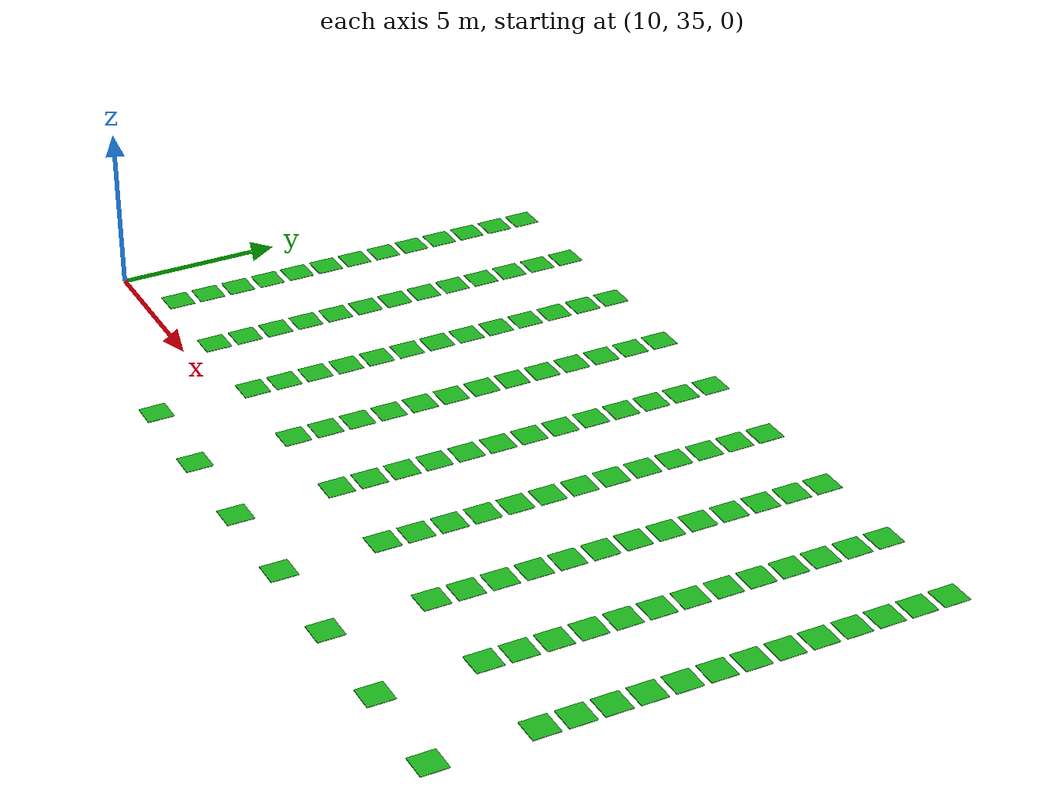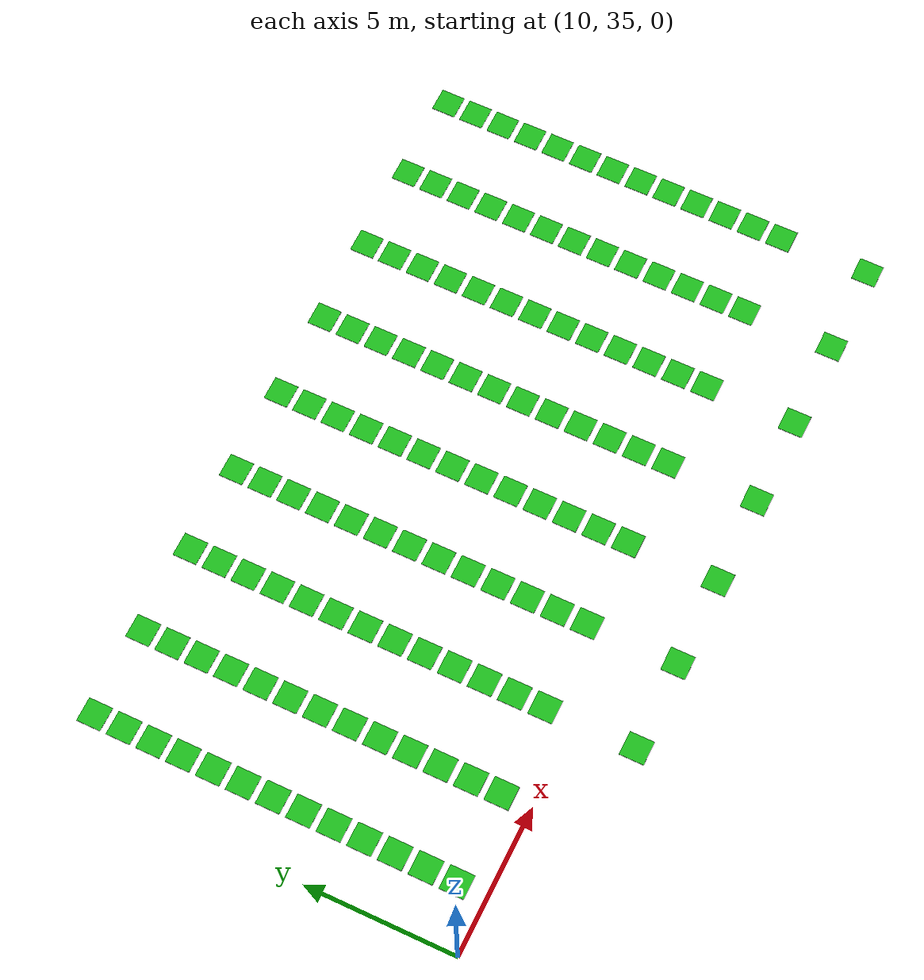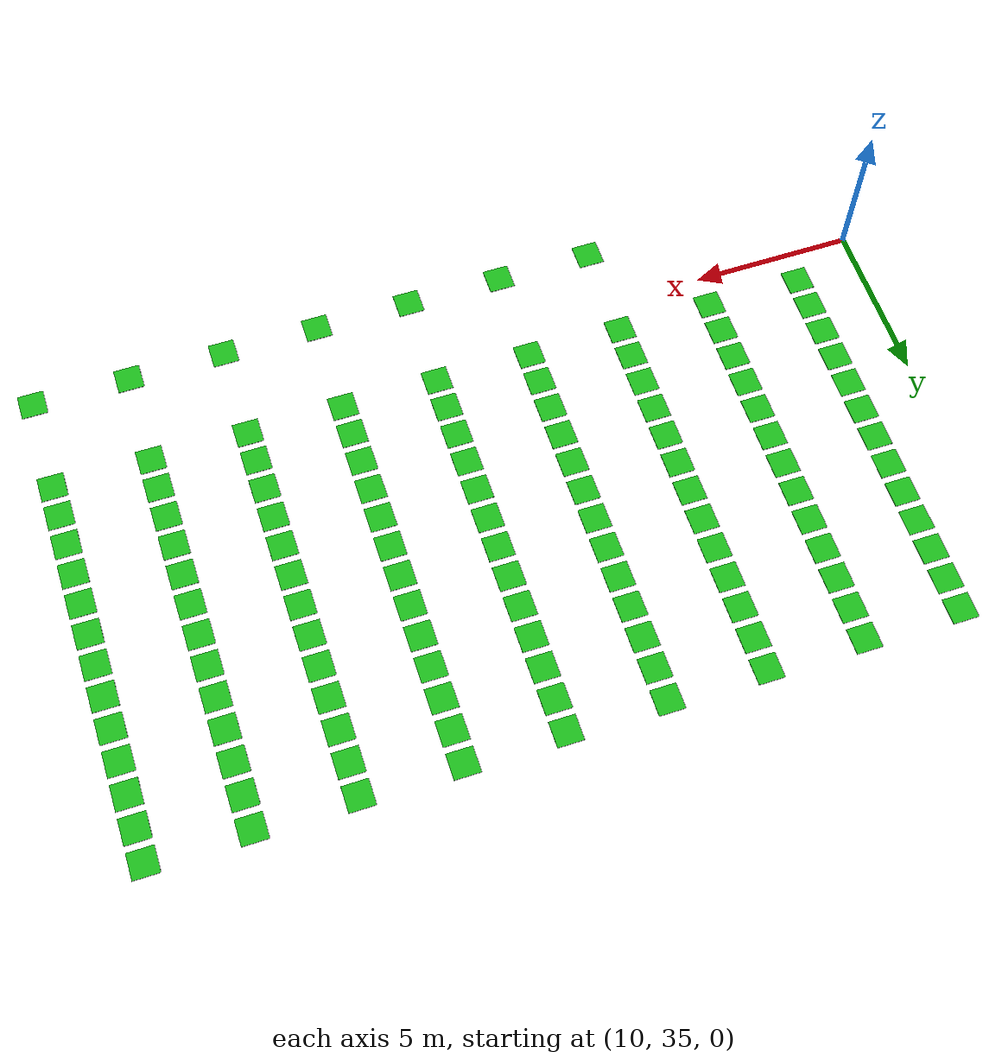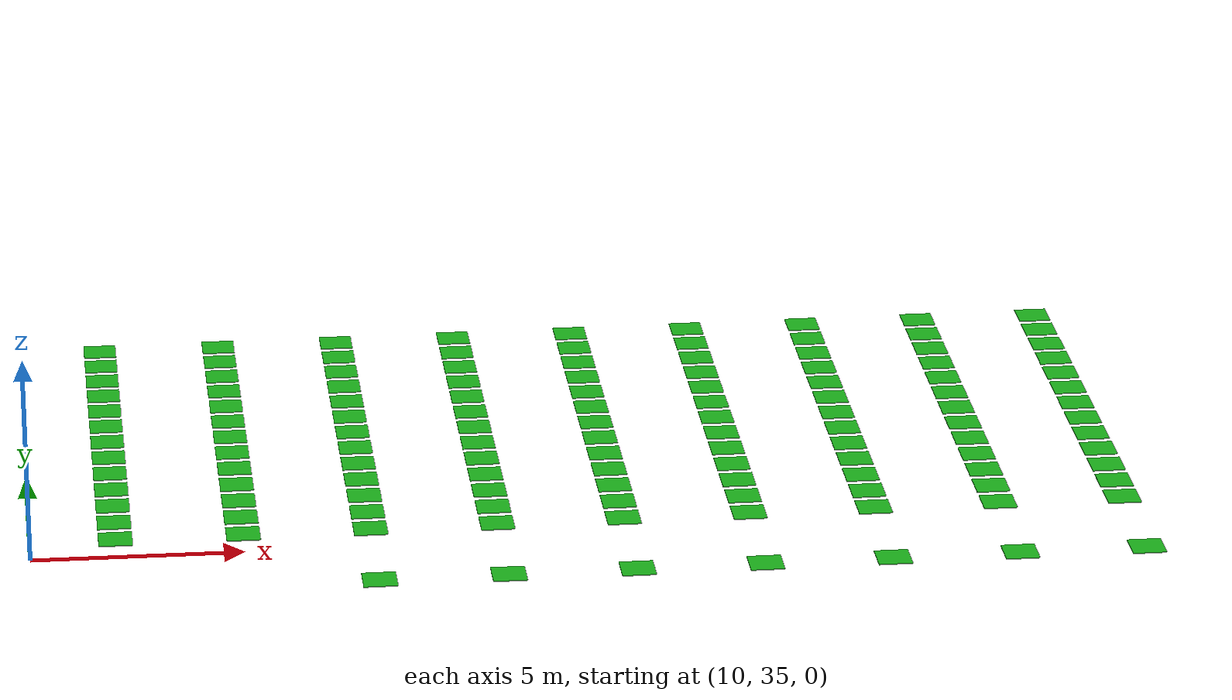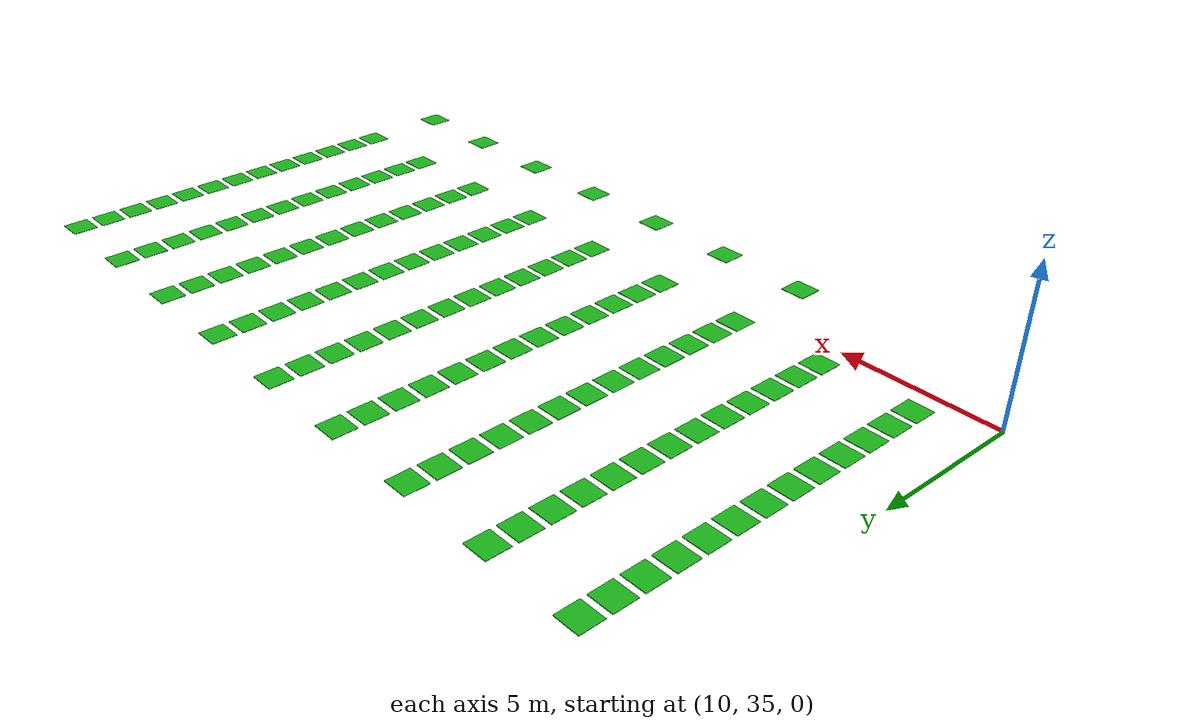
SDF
<sdf version="1.10">
 <world name="my_map">
  <model name="shelf_1179">
   <static>true</static>
   <pose>12.0
        48.0
        0.02
        0 0 0</pose>
   <link name="link">
    <visual name="visual">
     <geometry><box><size>0.8
                0.8
                0.02</size></box></geometry>
     <material><ambient>0.10 0.70 0.10 1</ambient><diffuse>0.10 0.70 0.10 1</diffuse></material>
    </visual>
   </link>
  </model>
  <model name="shelf_1180">
   <static>true</static>
   <pose>15.0
        48.0
        0.02
        0 0 0</pose>
   <link name="link">
    <visual name="visual">
     <geometry><box><size>0.8
                0.8
                0.02</size></box></geometry>
     <material><ambient>0.10 0.70 0.10 1</ambient><diffuse>0.10 0.70 0.10 1</diffuse></material>
    </visual>
   </link>
  </model>
  <model name="shelf_1181">
   <static>true</static>
   <pose>18.0
        48.0
        0.02
        0 0 0</pose>
   <link name="link">
    <visual name="visual">
     <geometry><box><size>0.8
                0.8
                0.02</size></box></geometry>
     <material><ambient>0.10 0.70 0.10 1</ambient><diffuse>0.10 0.70 0.10 1</diffuse></material>
    </visual>
   </link>
  </model>
  <model name="shelf_1182">
   <static>true</static>
   <pose>21.0
        48.0
        0.02
        0 0 0</pose>
   <link name="link">
    <visual name="visual">
     <geometry><box><size>0.8
                0.8
                0.02</size></box></geometry>
     <material><ambient>0.10 0.70 0.10 1</ambient><diffuse>0.10 0.70 0.10 1</diffuse></material>
    </visual>
   </link>
  </model>
  <model name="shelf_1183">
   <static>true</static>
   <pose>24.0
        48.0
        0.02
        0 0 0</pose>
   <link name="link">
    <visual name="visual">
     <geometry><box><size>0.8
                0.8
                0.02</size></box></geometry>
     <material><ambient>0.10 0.70 0.10 1</ambient><diffuse>0.10 0.70 0.10 1</diffuse></material>
    </visual>
   </link>
  </model>
  <model name="shelf_1184">
   <static>true</static>
   <pose>27.0
        48.0
        0.02
        0 0 0</pose>
   <link name="link">
    <visual name="visual">
     <geometry><box><size>0.8
                0.8
                0.02</size></box></geometry>
     <material><ambient>0.10 0.70 0.10 1</ambient><diffuse>0.10 0.70 0.10 1</diffuse></material>
    </visual>
   </link>
  </model>
  <model name="shelf_1185">
   <static>true</static>
   <pose>30.0
        48.0
        0.02
        0 0 0</pose>
   <link name="link">
    <visual name="visual">
     <geometry><box><size>0.8
                0.8
                0.02</size></box></geometry>
     <material><ambient>0.10 0.70 0.10 1</ambient><diffuse>0.10 0.70 0.10 1</diffuse></material>
    </visual>
   </link>
  </model>
  <model name="shelf_1186">
   <static>true</static>
   <pose>33.0
        48.0
        0.02
        0 0 0</pose>
   <link name="link">
    <visual name="visual">
     <geometry><box><size>0.8
                0.8
                0.02</size></box></geometry>
     <material><ambient>0.10 0.70 0.10 1</ambient><diffuse>0.10 0.70 0.10 1</diffuse></material>
    </visual>
   </link>
  </model>
  <model name="shelf_1187">
   <static>true</static>
   <pose>36.0
        48.0
        0.02
        0 0 0</pose>
   <link name="link">
    <visual name="visual">
     <geometry><box><size>0.8
                0.8
                0.02</size></box></geometry>
     <material><ambient>0.10 0.70 0.10 1</ambient><diffuse>0.10 0.70 0.10 1</diffuse></material>
    </visual>
   </link>
  </model>
  <model name="shelf_1204">
   <static>true</static>
   <pose>12.0
        47.0
        0.02
        0 0 0</pose>
   <link name="link">
    <visual name="visual">
     <geometry><box><size>0.8
                0.8
                0.02</size></box></geometry>
     <material><ambient>0.10 0.70 0.10 1</ambient><diffuse>0.10 0.70 0.10 1</diffuse></material>
    </visual>
   </link>
  </model>
  <model name="shelf_1205">
   <static>true</static>
   <pose>15.0
        47.0
        0.02
        0 0 0</pose>
   <link name="link">
    <visual name="visual">
     <geometry><box><size>0.8
                0.8
                0.02</size></box></geometry>
     <material><ambient>0.10 0.70 0.10 1</ambient><diffuse>0.10 0.70 0.10 1</diffuse></material>
    </visual>
   </link>
  </model>
  <model name="shelf_1206">
   <static>true</static>
   <pose>18.0
        47.0
        0.02
        0 0 0</pose>
   <link name="link">
    <visual name="visual">
     <geometry><box><size>0.8
                0.8
                0.02</size></box></geometry>
     <material><ambient>0.10 0.70 0.10 1</ambient><diffuse>0.10 0.70 0.10 1</diffuse></material>
    </visual>
   </link>
  </model>
  <model name="shelf_1207">
   <static>true</static>
   <pose>21.0
        47.0
        0.02
        0 0 0</pose>
   <link name="link">
    <visual name="visual">
     <geometry><box><size>0.8
                0.8
                0.02</size></box></geometry>
     <material><ambient>0.10 0.70 0.10 1</ambient><diffuse>0.10 0.70 0.10 1</diffuse></material>
    </visual>
   </link>
  </model>
  <model name="shelf_1208">
   <static>true</static>
   <pose>24.0
        47.0
        0.02
        0 0 0</pose>
   <link name="link">
    <visual name="visual">
     <geometry><box><size>0.8
                0.8
                0.02</size></box></geometry>
     <material><ambient>0.10 0.70 0.10 1</ambient><diffuse>0.10 0.70 0.10 1</diffuse></material>
    </visual>
   </link>
  </model>
  <model name="shelf_1209">
   <static>true</static>
   <pose>27.0
        47.0
        0.02
        0 0 0</pose>
   <link name="link">
    <visual name="visual">
     <geometry><box><size>0.8
                0.8
                0.02</size></box></geometry>
     <material><ambient>0.10 0.70 0.10 1</ambient><diffuse>0.10 0.70 0.10 1</diffuse></material>
    </visual>
   </link>
  </model>
  <model name="shelf_1210">
   <static>true</static>
   <pose>30.0
        47.0
        0.02
        0 0 0</pose>
   <link name="link">
    <visual name="visual">
     <geometry><box><size>0.8
                0.8
                0.02</size></box></geometry>
     <material><ambient>0.10 0.70 0.10 1</ambient><diffuse>0.10 0.70 0.10 1</diffuse></material>
    </visual>
   </link>
  </model>
  <model name="shelf_1211">
   <static>true</static>
   <pose>33.0
        47.0
        0.02
        0 0 0</pose>
   <link name="link">
    <visual name="visual">
     <geometry><box><size>0.8
                0.8
                0.02</size></box></geometry>
     <material><ambient>0.10 0.70 0.10 1</ambient><diffuse>0.10 0.70 0.10 1</diffuse></material>
    </visual>
   </link>
  </model>
  <model name="shelf_1212">
   <static>true</static>
   <pose>36.0
        47.0
        0.02
        0 0 0</pose>
   <link name="link">
    <visual name="visual">
     <geometry><box><size>0.8
                0.8
                0.02</size></box></geometry>
     <material><ambient>0.10 0.70 0.10 1</ambient><diffuse>0.10 0.70 0.10 1</diffuse></material>
    </visual>
   </link>
  </model>
  <model name="shelf_1229">
   <static>true</static>
   <pose>12.0
        46.0
        0.02
        0 0 0</pose>
   <link name="link">
    <visual name="visual">
     <geometry><box><size>0.8
                0.8
                0.02</size></box></geometry>
     <material><ambient>0.10 0.70 0.10 1</ambient><diffuse>0.10 0.70 0.10 1</diffuse></material>
    </visual>
   </link>
  </model>
  <model name="shelf_1230">
   <static>true</static>
   <pose>15.0
        46.0
        0.02
        0 0 0</pose>
   <link name="link">
    <visual name="visual">
     <geometry><box><size>0.8
                0.8
                0.02</size></box></geometry>
     <material><ambient>0.10 0.70 0.10 1</ambient><diffuse>0.10 0.70 0.10 1</diffuse></material>
    </visual>
   </link>
  </model>
  <model name="shelf_1231">
   <static>true</static>
   <pose>18.0
        46.0
        0.02
        0 0 0</pose>
   <link name="link">
    <visual name="visual">
     <geometry><box><size>0.8
                0.8
                0.02</size></box></geometry>
     <material><ambient>0.10 0.70 0.10 1</ambient><diffuse>0.10 0.70 0.10 1</diffuse></material>
    </visual>
   </link>
  </model>
  <model name="shelf_1232">
   <static>true</static>
   <pose>21.0
        46.0
        0.02
        0 0 0</pose>
   <link name="link">
    <visual name="visual">
     <geometry><box><size>0.8
                0.8
                0.02</size></box></geometry>
     <material><ambient>0.10 0.70 0.10 1</ambient><diffuse>0.10 0.70 0.10 1</diffuse></material>
    </visual>
   </link>
  </model>
  <model name="shelf_1233">
   <static>true</static>
   <pose>24.0
        46.0
        0.02
        0 0 0</pose>
   <link name="link">
    <visual name="visual">
     <geometry><box><size>0.8
                0.8
                0.02</size></box></geometry>
     <material><ambient>0.10 0.70 0.10 1</ambient><diffuse>0.10 0.70 0.10 1</diffuse></material>
    </visual>
   </link>
  </model>
  <model name="shelf_1234">
   <static>true</static>
   <pose>27.0
        46.0
        0.02
        0 0 0</pose>
   <link name="link">
    <visual name="visual">
     <geometry><box><size>0.8
                0.8
                0.02</size></box></geometry>
     <material><ambient>0.10 0.70 0.10 1</ambient><diffuse>0.10 0.70 0.10 1</diffuse></material>
    </visual>
   </link>
  </model>
  <model name="shelf_1235">
   <static>true</static>
   <pose>30.0
        46.0
        0.02
        0 0 0</pose>
   <link name="link">
    <visual name="visual">
     <geometry><box><size>0.8
                0.8
                0.02</size></box></geometry>
     <material><ambient>0.10 0.70 0.10 1</ambient><diffuse>0.10 0.70 0.10 1</diffuse></material>
    </visual>
   </link>
  </model>
  <model name="shelf_1236">
   <static>true</static>
   <pose>33.0
        46.0
        0.02
        0 0 0</pose>
   <link name="link">
    <visual name="visual">
     <geometry><box><size>0.8
                0.8
                0.02</size></box></geometry>
     <material><ambient>0.10 0.70 0.10 1</ambient><diffuse>0.10 0.70 0.10 1</diffuse></material>
    </visual>
   </link>
  </model>
  <model name="shelf_1237">
   <static>true</static>
   <pose>36.0
        46.0
        0.02
        0 0 0</pose>
   <link name="link">
    <visual name="visual">
     <geometry><box><size>0.8
                0.8
                0.02</size></box></geometry>
     <material><ambient>0.10 0.70 0.10 1</ambient><diffuse>0.10 0.70 0.10 1</diffuse></material>
    </visual>
   </link>
  </model>
  <model name="shelf_1254">
   <static>true</static>
   <pose>12.0
        45.0
        0.02
        0 0 0</pose>
   <link name="link">
    <visual name="visual">
     <geometry><box><size>0.8
                0.8
                0.02</size></box></geometry>
     <material><ambient>0.10 0.70 0.10 1</ambient><diffuse>0.10 0.70 0.10 1</diffuse></material>
    </visual>
   </link>
  </model>
  <model name="shelf_1255">
   <static>true</static>
   <pose>15.0
        45.0
        0.02
        0 0 0</pose>
   <link name="link">
    <visual name="visual">
     <geometry><box><size>0.8
                0.8
                0.02</size></box></geometry>
     <material><ambient>0.10 0.70 0.10 1</ambient><diffuse>0.10 0.70 0.10 1</diffuse></material>
    </visual>
   </link>
  </model>
  <model name="shelf_1256">
   <static>true</static>
   <pose>18.0
        45.0
        0.02
        0 0 0</pose>
   <link name="link">
    <visual name="visual">
     <geometry><box><size>0.8
                0.8
                0.02</size></box></geometry>
     <material><ambient>0.10 0.70 0.10 1</ambient><diffuse>0.10 0.70 0.10 1</diffuse></material>
    </visual>
   </link>
  </model>
  <model name="shelf_1257">
   <static>true</static>
   <pose>21.0
        45.0
        0.02
        0 0 0</pose>
   <link name="link">
    <visual name="visual">
     <geometry><box><size>0.8
                0.8
                0.02</size></box></geometry>
     <material><ambient>0.10 0.70 0.10 1</ambient><diffuse>0.10 0.70 0.10 1</diffuse></material>
    </visual>
   </link>
  </model>
  <model name="shelf_1258">
   <static>true</static>
   <pose>24.0
        45.0
        0.02
        0 0 0</pose>
   <link name="link">
    <visual name="visual">
     <geometry><box><size>0.8
                0.8
                0.02</size></box></geometry>
     <material><ambient>0.10 0.70 0.10 1</ambient><diffuse>0.10 0.70 0.10 1</diffuse></material>
    </visual>
   </link>
  </model>
  <model name="shelf_1259">
   <static>true</static>
   <pose>27.0
        45.0
        0.02
        0 0 0</pose>
   <link name="link">
    <visual name="visual">
     <geometry><box><size>0.8
                0.8
                0.02</size></box></geometry>
     <material><ambient>0.10 0.70 0.10 1</ambient><diffuse>0.10 0.70 0.10 1</diffuse></material>
    </visual>
   </link>
  </model>
  <model name="shelf_1260">
   <static>true</static>
   <pose>30.0
        45.0
        0.02
        0 0 0</pose>
   <link name="link">
    <visual name="visual">
     <geometry><box><size>0.8
                0.8
                0.02</size></box></geometry>
     <material><ambient>0.10 0.70 0.10 1</ambient><diffuse>0.10 0.70 0.10 1</diffuse></material>
    </visual>
   </link>
  </model>
  <model name="shelf_1261">
   <static>true</static>
   <pose>33.0
        45.0
        0.02
        0 0 0</pose>
   <link name="link">
    <visual name="visual">
     <geometry><box><size>0.8
                0.8
                0.02</size></box></geometry>
     <material><ambient>0.10 0.70 0.10 1</ambient><diffuse>0.10 0.70 0.10 1</diffuse></material>
    </visual>
   </link>
  </model>
  <model name="shelf_1262">
   <static>true</static>
   <pose>36.0
        45.0
        0.02
        0 0 0</pose>
   <link name="link">
    <visual name="visual">
     <geometry><box><size>0.8
                0.8
                0.02</size></box></geometry>
     <material><ambient>0.10 0.70 0.10 1</ambient><diffuse>0.10 0.70 0.10 1</diffuse></material>
    </visual>
   </link>
  </model>
  <model name="shelf_1279">
   <static>true</static>
   <pose>12.0
        44.0
        0.02
        0 0 0</pose>
   <link name="link">
    <visual name="visual">
     <geometry><box><size>0.8
                0.8
                0.02</size></box></geometry>
     <material><ambient>0.10 0.70 0.10 1</ambient><diffuse>0.10 0.70 0.10 1</diffuse></material>
    </visual>
   </link>
  </model>
  <model name="shelf_1280">
   <static>true</static>
   <pose>15.0
        44.0
        0.02
        0 0 0</pose>
   <link name="link">
    <visual name="visual">
     <geometry><box><size>0.8
                0.8
                0.02</size></box></geometry>
     <material><ambient>0.10 0.70 0.10 1</ambient><diffuse>0.10 0.70 0.10 1</diffuse></material>
    </visual>
   </link>
  </model>
  <model name="shelf_1281">
   <static>true</static>
   <pose>18.0
        44.0
        0.02
        0 0 0</pose>
   <link name="link">
    <visual name="visual">
     <geometry><box><size>0.8
                0.8
                0.02</size></box></geometry>
     <material><ambient>0.10 0.70 0.10 1</ambient><diffuse>0.10 0.70 0.10 1</diffuse></material>
    </visual>
   </link>
  </model>
  <model name="shelf_1282">
   <static>true</static>
   <pose>21.0
        44.0
        0.02
        0 0 0</pose>
   <link name="link">
    <visual name="visual">
     <geometry><box><size>0.8
                0.8
                0.02</size></box></geometry>
     <material><ambient>0.10 0.70 0.10 1</ambient><diffuse>0.10 0.70 0.10 1</diffuse></material>
    </visual>
   </link>
  </model>
  <model name="shelf_1283">
   <static>true</static>
   <pose>24.0
        44.0
        0.02
        0 0 0</pose>
   <link name="link">
    <visual name="visual">
     <geometry><box><size>0.8
                0.8
                0.02</size></box></geometry>
     <material><ambient>0.10 0.70 0.10 1</ambient><diffuse>0.10 0.70 0.10 1</diffuse></material>
    </visual>
   </link>
  </model>
  <model name="shelf_1284">
   <static>true</static>
   <pose>27.0
        44.0
        0.02
        0 0 0</pose>
   <link name="link">
    <visual name="visual">
     <geometry><box><size>0.8
                0.8
                0.02</size></box></geometry>
     <material><ambient>0.10 0.70 0.10 1</ambient><diffuse>0.10 0.70 0.10 1</diffuse></material>
    </visual>
   </link>
  </model>
  <model name="shelf_1285">
   <static>true</static>
   <pose>30.0
        44.0
        0.02
        0 0 0</pose>
   <link name="link">
    <visual name="visual">
     <geometry><box><size>0.8
                0.8
                0.02</size></box></geometry>
     <material><ambient>0.10 0.70 0.10 1</ambient><diffuse>0.10 0.70 0.10 1</diffuse></material>
    </visual>
   </link>
  </model>
  <model name="shelf_1286">
   <static>true</static>
   <pose>33.0
        44.0
        0.02
        0 0 0</pose>
   <link name="link">
    <visual name="visual">
     <geometry><box><size>0.8
                0.8
                0.02</size></box></geometry>
     <material><ambient>0.10 0.70 0.10 1</ambient><diffuse>0.10 0.70 0.10 1</diffuse></material>
    </visual>
   </link>
  </model>
  <model name="shelf_1287">
   <static>true</static>
   <pose>36.0
        44.0
        0.02
        0 0 0</pose>
   <link name="link">
    <visual name="visual">
     <geometry><box><size>0.8
                0.8
                0.02</size></box></geometry>
     <material><ambient>0.10 0.70 0.10 1</ambient><diffuse>0.10 0.70 0.10 1</diffuse></material>
    </visual>
   </link>
  </model>
  <model name="shelf_1304">
   <static>true</static>
   <pose>12.0
        43.0
        0.02
        0 0 0</pose>
   <link name="link">
    <visual name="visual">
     <geometry><box><size>0.8
                0.8
                0.02</size></box></geometry>
     <material><ambient>0.10 0.70 0.10 1</ambient><diffuse>0.10 0.70 0.10 1</diffuse></material>
    </visual>
   </link>
  </model>
  <model name="shelf_1305">
   <static>true</static>
   <pose>15.0
        43.0
        0.02
        0 0 0</pose>
   <link name="link">
    <visual name="visual">
     <geometry><box><size>0.8
                0.8
                0.02</size></box></geometry>
     <material><ambient>0.10 0.70 0.10 1</ambient><diffuse>0.10 0.70 0.10 1</diffuse></material>
    </visual>
   </link>
  </model>
  <model name="shelf_1306">
   <static>true</static>
   <pose>18.0
        43.0
        0.02
        0 0 0</pose>
   <link name="link">
    <visual name="visual">
     <geometry><box><size>0.8
                0.8
                0.02</size></box></geometry>
     <material><ambient>0.10 0.70 0.10 1</ambient><diffuse>0.10 0.70 0.10 1</diffuse></material>
    </visual>
   </link>
  </model>
  <model name="shelf_1307">
   <static>true</static>
   <pose>21.0
        43.0
        0.02
        0 0 0</pose>
   <link name="link">
    <visual name="visual">
     <geometry><box><size>0.8
                0.8
                0.02</size></box></geometry>
     <material><ambient>0.10 0.70 0.10 1</ambient><diffuse>0.10 0.70 0.10 1</diffuse></material>
    </visual>
   </link>
  </model>
  <model name="shelf_1308">
   <static>true</static>
   <pose>24.0
        43.0
        0.02
        0 0 0</pose>
   <link name="link">
    <visual name="visual">
     <geometry><box><size>0.8
                0.8
                0.02</size></box></geometry>
     <material><ambient>0.10 0.70 0.10 1</ambient><diffuse>0.10 0.70 0.10 1</diffuse></material>
    </visual>
   </link>
  </model>
  <model name="shelf_1309">
   <static>true</static>
   <pose>27.0
        43.0
        0.02
        0 0 0</pose>
   <link name="link">
    <visual name="visual">
     <geometry><box><size>0.8
                0.8
                0.02</size></box></geometry>
     <material><ambient>0.10 0.70 0.10 1</ambient><diffuse>0.10 0.70 0.10 1</diffuse></material>
    </visual>
   </link>
  </model>
  <model name="shelf_1310">
   <static>true</static>
   <pose>30.0
        43.0
        0.02
        0 0 0</pose>
   <link name="link">
    <visual name="visual">
     <geometry><box><size>0.8
                0.8
                0.02</size></box></geometry>
     <material><ambient>0.10 0.70 0.10 1</ambient><diffuse>0.10 0.70 0.10 1</diffuse></material>
    </visual>
   </link>
  </model>
  <model name="shelf_1311">
   <static>true</static>
   <pose>33.0
        43.0
        0.02
        0 0 0</pose>
   <link name="link">
    <visual name="visual">
     <geometry><box><size>0.8
                0.8
                0.02</size></box></geometry>
     <material><ambient>0.10 0.70 0.10 1</ambient><diffuse>0.10 0.70 0.10 1</diffuse></material>
    </visual>
   </link>
  </model>
  <model name="shelf_1312">
   <static>true</static>
   <pose>36.0
        43.0
        0.02
        0 0 0</pose>
   <link name="link">
    <visual name="visual">
     <geometry><box><size>0.8
                0.8
                0.02</size></box></geometry>
     <material><ambient>0.10 0.70 0.10 1</ambient><diffuse>0.10 0.70 0.10 1</diffuse></material>
    </visual>
   </link>
  </model>
  <model name="shelf_1329">
   <static>true</static>
   <pose>12.0
        42.0
        0.02
        0 0 0</pose>
   <link name="link">
    <visual name="visual">
     <geometry><box><size>0.8
                0.8
                0.02</size></box></geometry>
     <material><ambient>0.10 0.70 0.10 1</ambient><diffuse>0.10 0.70 0.10 1</diffuse></material>
    </visual>
   </link>
  </model>
  <model name="shelf_1330">
   <static>true</static>
   <pose>15.0
        42.0
        0.02
        0 0 0</pose>
   <link name="link">
    <visual name="visual">
     <geometry><box><size>0.8
                0.8
                0.02</size></box></geometry>
     <material><ambient>0.10 0.70 0.10 1</ambient><diffuse>0.10 0.70 0.10 1</diffuse></material>
    </visual>
   </link>
  </model>
  <model name="shelf_1331">
   <static>true</static>
   <pose>18.0
        42.0
        0.02
        0 0 0</pose>
   <link name="link">
    <visual name="visual">
     <geometry><box><size>0.8
                0.8
                0.02</size></box></geometry>
     <material><ambient>0.10 0.70 0.10 1</ambient><diffuse>0.10 0.70 0.10 1</diffuse></material>
    </visual>
   </link>
  </model>
  <model name="shelf_1332">
   <static>true</static>
   <pose>21.0
        42.0
        0.02
        0 0 0</pose>
   <link name="link">
    <visual name="visual">
     <geometry><box><size>0.8
                0.8
                0.02</size></box></geometry>
     <material><ambient>0.10 0.70 0.10 1</ambient><diffuse>0.10 0.70 0.10 1</diffuse></material>
    </visual>
   </link>
  </model>
  <model name="shelf_1333">
   <static>true</static>
   <pose>24.0
        42.0
        0.02
        0 0 0</pose>
   <link name="link">
    <visual name="visual">
     <geometry><box><size>0.8
                0.8
                0.02</size></box></geometry>
     <material><ambient>0.10 0.70 0.10 1</ambient><diffuse>0.10 0.70 0.10 1</diffuse></material>
    </visual>
   </link>
  </model>
  <model name="shelf_1334">
   <static>true</static>
   <pose>27.0
        42.0
        0.02
        0 0 0</pose>
   <link name="link">
    <visual name="visual">
     <geometry><box><size>0.8
                0.8
                0.02</size></box></geometry>
     <material><ambient>0.10 0.70 0.10 1</ambient><diffuse>0.10 0.70 0.10 1</diffuse></material>
    </visual>
   </link>
  </model>
  <model name="shelf_1335">
   <static>true</static>
   <pose>30.0
        42.0
        0.02
        0 0 0</pose>
   <link name="link">
    <visual name="visual">
     <geometry><box><size>0.8
                0.8
                0.02</size></box></geometry>
     <material><ambient>0.10 0.70 0.10 1</ambient><diffuse>0.10 0.70 0.10 1</diffuse></material>
    </visual>
   </link>
  </model>
  <model name="shelf_1336">
   <static>true</static>
   <pose>33.0
        42.0
        0.02
        0 0 0</pose>
   <link name="link">
    <visual name="visual">
     <geometry><box><size>0.8
                0.8
                0.02</size></box></geometry>
     <material><ambient>0.10 0.70 0.10 1</ambient><diffuse>0.10 0.70 0.10 1</diffuse></material>
    </visual>
   </link>
  </model>
  <model name="shelf_1337">
   <static>true</static>
   <pose>36.0
        42.0
        0.02
        0 0 0</pose>
   <link name="link">
    <visual name="visual">
     <geometry><box><size>0.8
                0.8
                0.02</size></box></geometry>
     <material><ambient>0.10 0.70 0.10 1</ambient><diffuse>0.10 0.70 0.10 1</diffuse></material>
    </visual>
   </link>
  </model>
  <model name="shelf_1354">
   <static>true</static>
   <pose>12.0
        41.0
        0.02
        0 0 0</pose>
   <link name="link">
    <visual name="visual">
     <geometry><box><size>0.8
                0.8
                0.02</size></box></geometry>
     <material><ambient>0.10 0.70 0.10 1</ambient><diffuse>0.10 0.70 0.10 1</diffuse></material>
    </visual>
   </link>
  </model>
  <model name="shelf_1355">
   <static>true</static>
   <pose>15.0
        41.0
        0.02
        0 0 0</pose>
   <link name="link">
    <visual name="visual">
     <geometry><box><size>0.8
                0.8
                0.02</size></box></geometry>
     <material><ambient>0.10 0.70 0.10 1</ambient><diffuse>0.10 0.70 0.10 1</diffuse></material>
    </visual>
   </link>
  </model>
  <model name="shelf_1356">
   <static>true</static>
   <pose>18.0
        41.0
        0.02
        0 0 0</pose>
   <link name="link">
    <visual name="visual">
     <geometry><box><size>0.8
                0.8
                0.02</size></box></geometry>
     <material><ambient>0.10 0.70 0.10 1</ambient><diffuse>0.10 0.70 0.10 1</diffuse></material>
    </visual>
   </link>
  </model>
  <model name="shelf_1357">
   <static>true</static>
   <pose>21.0
        41.0
        0.02
        0 0 0</pose>
   <link name="link">
    <visual name="visual">
     <geometry><box><size>0.8
                0.8
                0.02</size></box></geometry>
     <material><ambient>0.10 0.70 0.10 1</ambient><diffuse>0.10 0.70 0.10 1</diffuse></material>
    </visual>
   </link>
  </model>
  <model name="shelf_1358">
   <static>true</static>
   <pose>24.0
        41.0
        0.02
        0 0 0</pose>
   <link name="link">
    <visual name="visual">
     <geometry><box><size>0.8
                0.8
                0.02</size></box></geometry>
     <material><ambient>0.10 0.70 0.10 1</ambient><diffuse>0.10 0.70 0.10 1</diffuse></material>
    </visual>
   </link>
  </model>
  <model name="shelf_1359">
   <static>true</static>
   <pose>27.0
        41.0
        0.02
        0 0 0</pose>
   <link name="link">
    <visual name="visual">
     <geometry><box><size>0.8
                0.8
                0.02</size></box></geometry>
     <material><ambient>0.10 0.70 0.10 1</ambient><diffuse>0.10 0.70 0.10 1</diffuse></material>
    </visual>
   </link>
  </model>
  <model name="shelf_1360">
   <static>true</static>
   <pose>30.0
        41.0
        0.02
        0 0 0</pose>
   <link name="link">
    <visual name="visual">
     <geometry><box><size>0.8
                0.8
                0.02</size></box></geometry>
     <material><ambient>0.10 0.70 0.10 1</ambient><diffuse>0.10 0.70 0.10 1</diffuse></material>
    </visual>
   </link>
  </model>
  <model name="shelf_1361">
   <static>true</static>
   <pose>33.0
        41.0
        0.02
        0 0 0</pose>
   <link name="link">
    <visual name="visual">
     <geometry><box><size>0.8
                0.8
                0.02</size></box></geometry>
     <material><ambient>0.10 0.70 0.10 1</ambient><diffuse>0.10 0.70 0.10 1</diffuse></material>
    </visual>
   </link>
  </model>
  <model name="shelf_1362">
   <static>true</static>
   <pose>36.0
        41.0
        0.02
        0 0 0</pose>
   <link name="link">
    <visual name="visual">
     <geometry><box><size>0.8
                0.8
                0.02</size></box></geometry>
     <material><ambient>0.10 0.70 0.10 1</ambient><diffuse>0.10 0.70 0.10 1</diffuse></material>
    </visual>
   </link>
  </model>
  <model name="shelf_1379">
   <static>true</static>
   <pose>12.0
        40.0
        0.02
        0 0 0</pose>
   <link name="link">
    <visual name="visual">
     <geometry><box><size>0.8
                0.8
                0.02</size></box></geometry>
     <material><ambient>0.10 0.70 0.10 1</ambient><diffuse>0.10 0.70 0.10 1</diffuse></material>
    </visual>
   </link>
  </model>
  <model name="shelf_1380">
   <static>true</static>
   <pose>15.0
        40.0
        0.02
        0 0 0</pose>
   <link name="link">
    <visual name="visual">
     <geometry><box><size>0.8
                0.8
                0.02</size></box></geometry>
     <material><ambient>0.10 0.70 0.10 1</ambient><diffuse>0.10 0.70 0.10 1</diffuse></material>
    </visual>
   </link>
  </model>
  <model name="shelf_1381">
   <static>true</static>
   <pose>18.0
        40.0
        0.02
        0 0 0</pose>
   <link name="link">
    <visual name="visual">
     <geometry><box><size>0.8
                0.8
                0.02</size></box></geometry>
     <material><ambient>0.10 0.70 0.10 1</ambient><diffuse>0.10 0.70 0.10 1</diffuse></material>
    </visual>
   </link>
  </model>
  <model name="shelf_1382">
   <static>true</static>
   <pose>21.0
        40.0
        0.02
        0 0 0</pose>
   <link name="link">
    <visual name="visual">
     <geometry><box><size>0.8
                0.8
                0.02</size></box></geometry>
     <material><ambient>0.10 0.70 0.10 1</ambient><diffuse>0.10 0.70 0.10 1</diffuse></material>
    </visual>
   </link>
  </model>
  <model name="shelf_1383">
   <static>true</static>
   <pose>24.0
        40.0
        0.02
        0 0 0</pose>
   <link name="link">
    <visual name="visual">
     <geometry><box><size>0.8
                0.8
                0.02</size></box></geometry>
     <material><ambient>0.10 0.70 0.10 1</ambient><diffuse>0.10 0.70 0.10 1</diffuse></material>
    </visual>
   </link>
  </model>
  <model name="shelf_1384">
   <static>true</static>
   <pose>27.0
        40.0
        0.02
        0 0 0</pose>
   <link name="link">
    <visual name="visual">
     <geometry><box><size>0.8
                0.8
                0.02</size></box></geometry>
     <material><ambient>0.10 0.70 0.10 1</ambient><diffuse>0.10 0.70 0.10 1</diffuse></material>
    </visual>
   </link>
  </model>
  <model name="shelf_1385">
   <static>true</static>
   <pose>30.0
        40.0
        0.02
        0 0 0</pose>
   <link name="link">
    <visual name="visual">
     <geometry><box><size>0.8
                0.8
                0.02</size></box></geometry>
     <material><ambient>0.10 0.70 0.10 1</ambient><diffuse>0.10 0.70 0.10 1</diffuse></material>
    </visual>
   </link>
  </model>
  <model name="shelf_1386">
   <static>true</static>
   <pose>33.0
        40.0
        0.02
        0 0 0</pose>
   <link name="link">
    <visual name="visual">
     <geometry><box><size>0.8
                0.8
                0.02</size></box></geometry>
     <material><ambient>0.10 0.70 0.10 1</ambient><diffuse>0.10 0.70 0.10 1</diffuse></material>
    </visual>
   </link>
  </model>
  <model name="shelf_1387">
   <static>true</static>
   <pose>36.0
        40.0
        0.02
        0 0 0</pose>
   <link name="link">
    <visual name="visual">
     <geometry><box><size>0.8
                0.8
                0.02</size></box></geometry>
     <material><ambient>0.10 0.70 0.10 1</ambient><diffuse>0.10 0.70 0.10 1</diffuse></material>
    </visual>
   </link>
  </model>
  <model name="shelf_1404">
   <static>true</static>
   <pose>12.0
        39.0
        0.02
        0 0 0</pose>
   <link name="link">
    <visual name="visual">
     <geometry><box><size>0.8
                0.8
                0.02</size></box></geometry>
     <material><ambient>0.10 0.70 0.10 1</ambient><diffuse>0.10 0.70 0.10 1</diffuse></material>
    </visual>
   </link>
  </model>
  <model name="shelf_1405">
   <static>true</static>
   <pose>15.0
        39.0
        0.02
        0 0 0</pose>
   <link name="link">
    <visual name="visual">
     <geometry><box><size>0.8
                0.8
                0.02</size></box></geometry>
     <material><ambient>0.10 0.70 0.10 1</ambient><diffuse>0.10 0.70 0.10 1</diffuse></material>
    </visual>
   </link>
  </model>
  <model name="shelf_1406">
   <static>true</static>
   <pose>18.0
        39.0
        0.02
        0 0 0</pose>
   <link name="link">
    <visual name="visual">
     <geometry><box><size>0.8
                0.8
                0.02</size></box></geometry>
     <material><ambient>0.10 0.70 0.10 1</ambient><diffuse>0.10 0.70 0.10 1</diffuse></material>
    </visual>
   </link>
  </model>
  <model name="shelf_1407">
   <static>true</static>
   <pose>21.0
        39.0
        0.02
        0 0 0</pose>
   <link name="link">
    <visual name="visual">
     <geometry><box><size>0.8
                0.8
                0.02</size></box></geometry>
     <material><ambient>0.10 0.70 0.10 1</ambient><diffuse>0.10 0.70 0.10 1</diffuse></material>
    </visual>
   </link>
  </model>
  <model name="shelf_1408">
   <static>true</static>
   <pose>24.0
        39.0
        0.02
        0 0 0</pose>
   <link name="link">
    <visual name="visual">
     <geometry><box><size>0.8
                0.8
                0.02</size></box></geometry>
     <material><ambient>0.10 0.70 0.10 1</ambient><diffuse>0.10 0.70 0.10 1</diffuse></material>
    </visual>
   </link>
  </model>
  <model name="shelf_1409">
   <static>true</static>
   <pose>27.0
        39.0
        0.02
        0 0 0</pose>
   <link name="link">
    <visual name="visual">
     <geometry><box><size>0.8
                0.8
                0.02</size></box></geometry>
     <material><ambient>0.10 0.70 0.10 1</ambient><diffuse>0.10 0.70 0.10 1</diffuse></material>
    </visual>
   </link>
  </model>
  <model name="shelf_1410">
   <static>true</static>
   <pose>30.0
        39.0
        0.02
        0 0 0</pose>
   <link name="link">
    <visual name="visual">
     <geometry><box><size>0.8
                0.8
                0.02</size></box></geometry>
     <material><ambient>0.10 0.70 0.10 1</ambient><diffuse>0.10 0.70 0.10 1</diffuse></material>
    </visual>
   </link>
  </model>
  <model name="shelf_1411">
   <static>true</static>
   <pose>33.0
        39.0
        0.02
        0 0 0</pose>
   <link name="link">
    <visual name="visual">
     <geometry><box><size>0.8
                0.8
                0.02</size></box></geometry>
     <material><ambient>0.10 0.70 0.10 1</ambient><diffuse>0.10 0.70 0.10 1</diffuse></material>
    </visual>
   </link>
  </model>
  <model name="shelf_1412">
   <static>true</static>
   <pose>36.0
        39.0
        0.02
        0 0 0</pose>
   <link name="link">
    <visual name="visual">
     <geometry><box><size>0.8
                0.8
                0.02</size></box></geometry>
     <material><ambient>0.10 0.70 0.10 1</ambient><diffuse>0.10 0.70 0.10 1</diffuse></material>
    </visual>
   </link>
  </model>
  <model name="shelf_1429">
   <static>true</static>
   <pose>12.0
        38.0
        0.02
        0 0 0</pose>
   <link name="link">
    <visual name="visual">
     <geometry><box><size>0.8
                0.8
                0.02</size></box></geometry>
     <material><ambient>0.10 0.70 0.10 1</ambient><diffuse>0.10 0.70 0.10 1</diffuse></material>
    </visual>
   </link>
  </model>
  <model name="shelf_1430">
   <static>true</static>
   <pose>15.0
        38.0
        0.02
        0 0 0</pose>
   <link name="link">
    <visual name="visual">
     <geometry><box><size>0.8
                0.8
                0.02</size></box></geometry>
     <material><ambient>0.10 0.70 0.10 1</ambient><diffuse>0.10 0.70 0.10 1</diffuse></material>
    </visual>
   </link>
  </model>
  <model name="shelf_1431">
   <static>true</static>
   <pose>18.0
        38.0
        0.02
        0 0 0</pose>
   <link name="link">
    <visual name="visual">
     <geometry><box><size>0.8
                0.8
                0.02</size></box></geometry>
     <material><ambient>0.10 0.70 0.10 1</ambient><diffuse>0.10 0.70 0.10 1</diffuse></material>
    </visual>
   </link>
  </model>
  <model name="shelf_1432">
   <static>true</static>
   <pose>21.0
        38.0
        0.02
        0 0 0</pose>
   <link name="link">
    <visual name="visual">
     <geometry><box><size>0.8
                0.8
                0.02</size></box></geometry>
     <material><ambient>0.10 0.70 0.10 1</ambient><diffuse>0.10 0.70 0.10 1</diffuse></material>
    </visual>
   </link>
  </model>
  <model name="shelf_1433">
   <static>true</static>
   <pose>24.0
        38.0
        0.02
        0 0 0</pose>
   <link name="link">
    <visual name="visual">
     <geometry><box><size>0.8
                0.8
                0.02</size></box></geometry>
     <material><ambient>0.10 0.70 0.10 1</ambient><diffuse>0.10 0.70 0.10 1</diffuse></material>
    </visual>
   </link>
  </model>
  <model name="shelf_1434">
   <static>true</static>
   <pose>27.0
        38.0
        0.02
        0 0 0</pose>
   <link name="link">
    <visual name="visual">
     <geometry><box><size>0.8
                0.8
                0.02</size></box></geometry>
     <material><ambient>0.10 0.70 0.10 1</ambient><diffuse>0.10 0.70 0.10 1</diffuse></material>
    </visual>
   </link>
  </model>
  <model name="shelf_1435">
   <static>true</static>
   <pose>30.0
        38.0
        0.02
        0 0 0</pose>
   <link name="link">
    <visual name="visual">
     <geometry><box><size>0.8
                0.8
                0.02</size></box></geometry>
     <material><ambient>0.10 0.70 0.10 1</ambient><diffuse>0.10 0.70 0.10 1</diffuse></material>
    </visual>
   </link>
  </model>
  <model name="shelf_1436">
   <static>true</static>
   <pose>33.0
        38.0
        0.02
        0 0 0</pose>
   <link name="link">
    <visual name="visual">
     <geometry><box><size>0.8
                0.8
                0.02</size></box></geometry>
     <material><ambient>0.10 0.70 0.10 1</ambient><diffuse>0.10 0.70 0.10 1</diffuse></material>
    </visual>
   </link>
  </model>
  <model name="shelf_1437">
   <static>true</static>
   <pose>36.0
        38.0
        0.02
        0 0 0</pose>
   <link name="link">
    <visual name="visual">
     <geometry><box><size>0.8
                0.8
                0.02</size></box></geometry>
     <material><ambient>0.10 0.70 0.10 1</ambient><diffuse>0.10 0.70 0.10 1</diffuse></material>
    </visual>
   </link>
  </model>
  <model name="shelf_1454">
   <static>true</static>
   <pose>12.0
        37.0
        0.02
        0 0 0</pose>
   <link name="link">
    <visual name="visual">
     <geometry><box><size>0.8
                0.8
                0.02</size></box></geometry>
     <material><ambient>0.10 0.70 0.10 1</ambient><diffuse>0.10 0.70 0.10 1</diffuse></material>
    </visual>
   </link>
  </model>
  <model name="shelf_1455">
   <static>true</static>
   <pose>15.0
        37.0
        0.02
        0 0 0</pose>
   <link name="link">
    <visual name="visual">
     <geometry><box><size>0.8
                0.8
                0.02</size></box></geometry>
     <material><ambient>0.10 0.70 0.10 1</ambient><diffuse>0.10 0.70 0.10 1</diffuse></material>
    </visual>
   </link>
  </model>
  <model name="shelf_1456">
   <static>true</static>
   <pose>18.0
        37.0
        0.02
        0 0 0</pose>
   <link name="link">
    <visual name="visual">
     <geometry><box><size>0.8
                0.8
                0.02</size></box></geometry>
     <material><ambient>0.10 0.70 0.10 1</ambient><diffuse>0.10 0.70 0.10 1</diffuse></material>
    </visual>
   </link>
  </model>
  <model name="shelf_1457">
   <static>true</static>
   <pose>21.0
        37.0
        0.02
        0 0 0</pose>
   <link name="link">
    <visual name="visual">
     <geometry><box><size>0.8
                0.8
                0.02</size></box></geometry>
     <material><ambient>0.10 0.70 0.10 1</ambient><diffuse>0.10 0.70 0.10 1</diffuse></material>
    </visual>
   </link>
  </model>
  <model name="shelf_1458">
   <static>true</static>
   <pose>24.0
        37.0
        0.02
        0 0 0</pose>
   <link name="link">
    <visual name="visual">
     <geometry><box><size>0.8
                0.8
                0.02</size></box></geometry>
     <material><ambient>0.10 0.70 0.10 1</ambient><diffuse>0.10 0.70 0.10 1</diffuse></material>
    </visual>
   </link>
  </model>
  <model name="shelf_1459">
   <static>true</static>
   <pose>27.0
        37.0
        0.02
        0 0 0</pose>
   <link name="link">
    <visual name="visual">
     <geometry><box><size>0.8
                0.8
                0.02</size></box></geometry>
     <material><ambient>0.10 0.70 0.10 1</ambient><diffuse>0.10 0.70 0.10 1</diffuse></material>
    </visual>
   </link>
  </model>
  <model name="shelf_1460">
   <static>true</static>
   <pose>30.0
        37.0
        0.02
        0 0 0</pose>
   <link name="link">
    <visual name="visual">
     <geometry><box><size>0.8
                0.8
                0.02</size></box></geometry>
     <material><ambient>0.10 0.70 0.10 1</ambient><diffuse>0.10 0.70 0.10 1</diffuse></material>
    </visual>
   </link>
  </model>
  <model name="shelf_1461">
   <static>true</static>
   <pose>33.0
        37.0
        0.02
        0 0 0</pose>
   <link name="link">
    <visual name="visual">
     <geometry><box><size>0.8
                0.8
                0.02</size></box></geometry>
     <material><ambient>0.10 0.70 0.10 1</ambient><diffuse>0.10 0.70 0.10 1</diffuse></material>
    </visual>
   </link>
  </model>
  <model name="shelf_1462">
   <static>true</static>
   <pose>36.0
        37.0
        0.02
        0 0 0</pose>
   <link name="link">
    <visual name="visual">
     <geometry><box><size>0.8
                0.8
                0.02</size></box></geometry>
     <material><ambient>0.10 0.70 0.10 1</ambient><diffuse>0.10 0.70 0.10 1</diffuse></material>
    </visual>
   </link>
  </model>
  <model name="shelf_1479">
   <static>true</static>
   <pose>12.0
        36.0
        0.02
        0 0 0</pose>
   <link name="link">
    <visual name="visual">
     <geometry><box><size>0.8
                0.8
                0.02</size></box></geometry>
     <material><ambient>0.10 0.70 0.10 1</ambient><diffuse>0.10 0.70 0.10 1</diffuse></material>
    </visual>
   </link>
  </model>
  <model name="shelf_1480">
   <static>true</static>
   <pose>15.0
        36.0
        0.02
        0 0 0</pose>
   <link name="link">
    <visual name="visual">
     <geometry><box><size>0.8
                0.8
                0.02</size></box></geometry>
     <material><ambient>0.10 0.70 0.10 1</ambient><diffuse>0.10 0.70 0.10 1</diffuse></material>
    </visual>
   </link>
  </model>
  <model name="shelf_1481">
   <static>true</static>
   <pose>18.0
        36.0
        0.02
        0 0 0</pose>
   <link name="link">
    <visual name="visual">
     <geometry><box><size>0.8
                0.8
                0.02</size></box></geometry>
     <material><ambient>0.10 0.70 0.10 1</ambient><diffuse>0.10 0.70 0.10 1</diffuse></material>
    </visual>
   </link>
  </model>
  <model name="shelf_1482">
   <static>true</static>
   <pose>21.0
        36.0
        0.02
        0 0 0</pose>
   <link name="link">
    <visual name="visual">
     <geometry><box><size>0.8
                0.8
                0.02</size></box></geometry>
     <material><ambient>0.10 0.70 0.10 1</ambient><diffuse>0.10 0.70 0.10 1</diffuse></material>
    </visual>
   </link>
  </model>
  <model name="shelf_1483">
   <static>true</static>
   <pose>24.0
        36.0
        0.02
        0 0 0</pose>
   <link name="link">
    <visual name="visual">
     <geometry><box><size>0.8
                0.8
                0.02</size></box></geometry>
     <material><ambient>0.10 0.70 0.10 1</ambient><diffuse>0.10 0.70 0.10 1</diffuse></material>
    </visual>
   </link>
  </model>
  <model name="shelf_1484">
   <static>true</static>
   <pose>27.0
        36.0
        0.02
        0 0 0</pose>
   <link name="link">
    <visual name="visual">
     <geometry><box><size>0.8
                0.8
                0.02</size></box></geometry>
     <material><ambient>0.10 0.70 0.10 1</ambient><diffuse>0.10 0.70 0.10 1</diffuse></material>
    </visual>
   </link>
  </model>
  <model name="shelf_1485">
   <static>true</static>
   <pose>30.0
        36.0
        0.02
        0 0 0</pose>
   <link name="link">
    <visual name="visual">
     <geometry><box><size>0.8
                0.8
                0.02</size></box></geometry>
     <material><ambient>0.10 0.70 0.10 1</ambient><diffuse>0.10 0.70 0.10 1</diffuse></material>
    </visual>
   </link>
  </model>
  <model name="shelf_1486">
   <static>true</static>
   <pose>33.0
        36.0
        0.02
        0 0 0</pose>
   <link name="link">
    <visual name="visual">
     <geometry><box><size>0.8
                0.8
                0.02</size></box></geometry>
     <material><ambient>0.10 0.70 0.10 1</ambient><diffuse>0.10 0.70 0.10 1</diffuse></material>
    </visual>
   </link>
  </model>
  <model name="shelf_1487">
   <static>true</static>
   <pose>36.0
        36.0
        0.02
        0 0 0</pose>
   <link name="link">
    <visual name="visual">
     <geometry><box><size>0.8
                0.8
                0.02</size></box></geometry>
     <material><ambient>0.10 0.70 0.10 1</ambient><diffuse>0.10 0.70 0.10 1</diffuse></material>
    </visual>
   </link>
  </model>
  <model name="shelf_1506">
   <static>true</static>
   <pose>18.0
        33.0
        0.02
        0 0 0</pose>
   <link name="link">
    <visual name="visual">
     <geometry><box><size>0.8
                0.8
                0.02</size></box></geometry>
     <material><ambient>0.10 0.70 0.10 1</ambient><diffuse>0.10 0.70 0.10 1</diffuse></material>
    </visual>
   </link>
  </model>
  <model name="shelf_1507">
   <static>true</static>
   <pose>21.0
        33.0
        0.02
        0 0 0</pose>
   <link name="link">
    <visual name="visual">
     <geometry><box><size>0.8
                0.8
                0.02</size></box></geometry>
     <material><ambient>0.10 0.70 0.10 1</ambient><diffuse>0.10 0.70 0.10 1</diffuse></material>
    </visual>
   </link>
  </model>
  <model name="shelf_1508">
   <static>true</static>
   <pose>24.0
        33.0
        0.02
        0 0 0</pose>
   <link name="link">
    <visual name="visual">
     <geometry><box><size>0.8
                0.8
                0.02</size></box></geometry>
     <material><ambient>0.10 0.70 0.10 1</ambient><diffuse>0.10 0.70 0.10 1</diffuse></material>
    </visual>
   </link>
  </model>
  <model name="shelf_1509">
   <static>true</static>
   <pose>27.0
        33.0
        0.02
        0 0 0</pose>
   <link name="link">
    <visual name="visual">
     <geometry><box><size>0.8
                0.8
                0.02</size></box></geometry>
     <material><ambient>0.10 0.70 0.10 1</ambient><diffuse>0.10 0.70 0.10 1</diffuse></material>
    </visual>
   </link>
  </model>
  <model name="shelf_1510">
   <static>true</static>
   <pose>30.0
        33.0
        0.02
        0 0 0</pose>
   <link name="link">
    <visual name="visual">
     <geometry><box><size>0.8
                0.8
                0.02</size></box></geometry>
     <material><ambient>0.10 0.70 0.10 1</ambient><diffuse>0.10 0.70 0.10 1</diffuse></material>
    </visual>
   </link>
  </model>
  <model name="shelf_1511">
   <static>true</static>
   <pose>33.0
        33.0
        0.02
        0 0 0</pose>
   <link name="link">
    <visual name="visual">
     <geometry><box><size>0.8
                0.8
                0.02</size></box></geometry>
     <material><ambient>0.10 0.70 0.10 1</ambient><diffuse>0.10 0.70 0.10 1</diffuse></material>
    </visual>
   </link>
  </model>
  <model name="shelf_1512">
   <static>true</static>
   <pose>36.0
        33.0
        0.02
        0 0 0</pose>
   <link name="link">
    <visual name="visual">
     <geometry><box><size>0.8
                0.8
                0.02</size></box></geometry>
     <material><ambient>0.10 0.70 0.10 1</ambient><diffuse>0.10 0.70 0.10 1</diffuse></material>
    </visual>
   </link>
  </model>
 </world>
</sdf>
